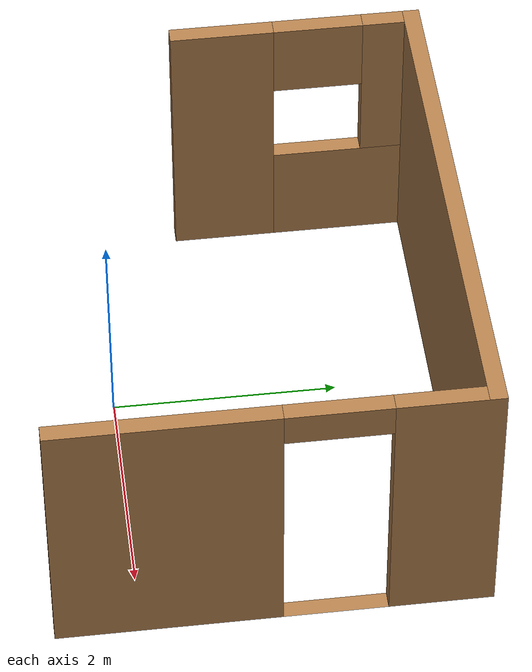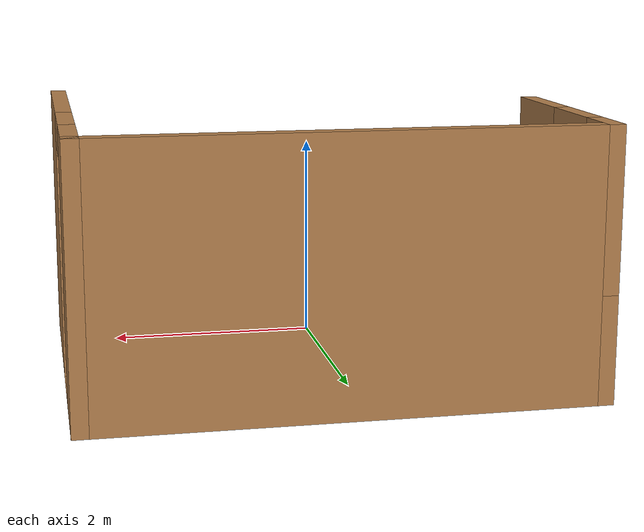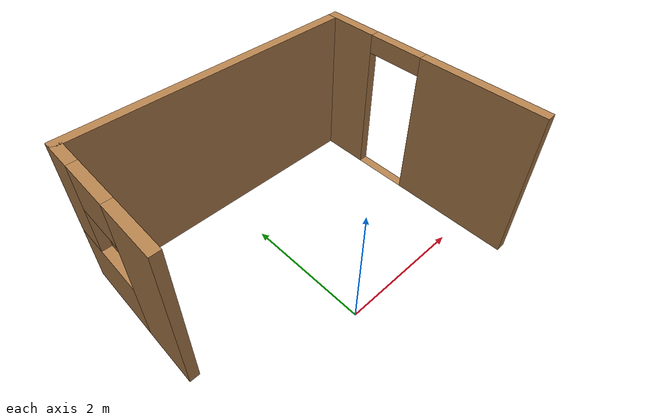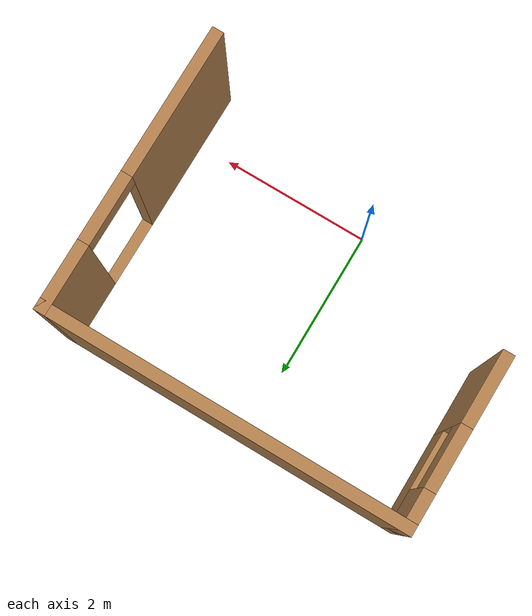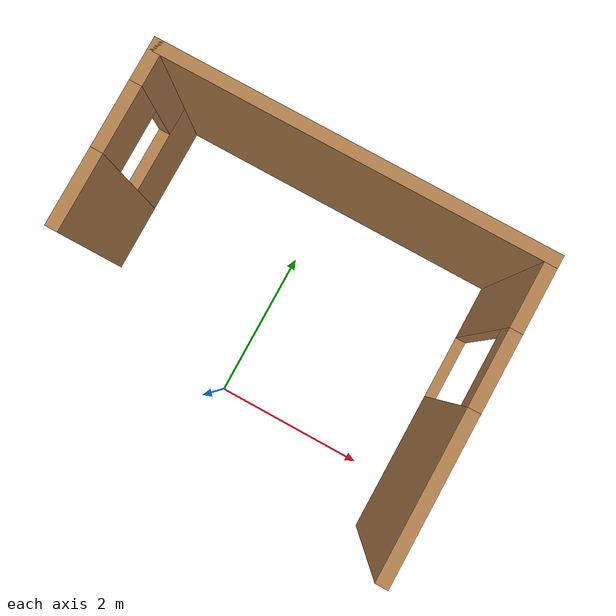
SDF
<?xml version='1.0'?>
<sdf version='1.7'>
  <model name='house'>
    <pose>0.188223 1.14586 0 0 -0 0</pose>
    <link name='Wall_0'>
      <pose>-2.3 0.75 0 0 -0 1.5708</pose>
      <visual name='Wall_0_Visual_0'>
        <pose>-0.662394 0 1.25 0 -0 0</pose>
        <geometry>
          <box>
            <size>0.925211 0.15 2.5</size>
          </box>
        </geometry>
        <material>
          <script>
            <uri>file://media/materials/scripts/gazebo.material</uri>
            <name>Gazebo/Wood</name>
          </script>
          <ambient>1 1 1 1</ambient>
        </material>
        <meta>
          <layer>0</layer>
        </meta>
      </visual>
      <collision name='Wall_0_Collision_0'>
        <geometry>
          <box>
            <size>0.925211 0.15 2.5</size>
          </box>
        </geometry>
        <pose>-0.662394 0 1.25 0 -0 0</pose>
      </collision>
      <visual name='Wall_0_Visual_1'>
        <pose>0.462606 0 0.5 0 -0 0</pose>
        <geometry>
          <box>
            <size>1.32479 0.15 1</size>
          </box>
        </geometry>
        <material>
          <script>
            <uri>file://media/materials/scripts/gazebo.material</uri>
            <name>Gazebo/Wood</name>
          </script>
          <ambient>1 1 1 1</ambient>
        </material>
        <meta>
          <layer>0</layer>
        </meta>
      </visual>
      <collision name='Wall_0_Collision_1'>
        <geometry>
          <box>
            <size>1.32479 0.15 1</size>
          </box>
        </geometry>
        <pose>0.462606 0 0.5 0 -0 0</pose>
      </collision>
      <visual name='Wall_0_Visual_2'>
        <pose>0.862606 0 1.75 0 -0 0</pose>
        <geometry>
          <box>
            <size>0.524789 0.15 1.5</size>
          </box>
        </geometry>
        <material>
          <script>
            <uri>file://media/materials/scripts/gazebo.material</uri>
            <name>Gazebo/Wood</name>
          </script>
          <ambient>1 1 1 1</ambient>
        </material>
        <meta>
          <layer>0</layer>
        </meta>
      </visual>
      <collision name='Wall_0_Collision_2'>
        <geometry>
          <box>
            <size>0.524789 0.15 1.5</size>
          </box>
        </geometry>
        <pose>0.862606 0 1.75 0 -0 0</pose>
      </collision>
      <visual name='Wall_0_Visual_3'>
        <pose>0.200211 0 2.15 0 -0 0</pose>
        <geometry>
          <box>
            <size>0.8 0.15 0.7</size>
          </box>
        </geometry>
        <material>
          <script>
            <uri>file://media/materials/scripts/gazebo.material</uri>
            <name>Gazebo/Wood</name>
          </script>
          <ambient>1 1 1 1</ambient>
        </material>
        <meta>
          <layer>0</layer>
        </meta>
      </visual>
      <collision name='Wall_0_Collision_3'>
        <geometry>
          <box>
            <size>0.8 0.15 0.7</size>
          </box>
        </geometry>
        <pose>0.200211 0 2.15 0 -0 0</pose>
      </collision>
    </link>
    <link name='Wall_1'>
      <collision name='Wall_1_Collision'>
        <geometry>
          <box>
            <size>4.75 0.15 2.5</size>
          </box>
        </geometry>
        <pose>0 0 1.25 0 -0 0</pose>
      </collision>
      <visual name='Wall_1_Visual'>
        <pose>0 0 1.25 0 -0 0</pose>
        <geometry>
          <box>
            <size>4.75 0.15 2.5</size>
          </box>
        </geometry>
        <material>
          <script>
            <uri>file://media/materials/scripts/gazebo.material</uri>
            <name>Gazebo/Wood</name>
          </script>
          <ambient>1 1 1 1</ambient>
        </material>
        <meta>
          <layer>0</layer>
        </meta>
      </visual>
      <pose>-0 1.8 0 0 -0 0</pose>
    </link>
    <link name='Wall_2'>
      <pose>2.3 0 0 0 -0 -1.5708</pose>
      <visual name='Wall_2_Visual_0'>
        <pose>-1.42141 0 1.25 0 -0 0</pose>
        <geometry>
          <box>
            <size>0.907187 0.15 2.5</size>
          </box>
        </geometry>
        <material>
          <script>
            <uri>file://media/materials/scripts/gazebo.material</uri>
            <name>Gazebo/Wood</name>
          </script>
          <ambient>1 1 1 1</ambient>
        </material>
        <meta>
          <layer>0</layer>
        </meta>
      </visual>
      <collision name='Wall_2_Collision_0'>
        <geometry>
          <box>
            <size>0.907187 0.15 2.5</size>
          </box>
        </geometry>
        <pose>-1.42141 0 1.25 0 -0 0</pose>
      </collision>
      <visual name='Wall_2_Visual_1'>
        <pose>0.903593 0 1.25 0 -0 0</pose>
        <geometry>
          <box>
            <size>1.94281 0.15 2.5</size>
          </box>
        </geometry>
        <material>
          <script>
            <uri>file://media/materials/scripts/gazebo.material</uri>
            <name>Gazebo/Wood</name>
          </script>
          <ambient>1 1 1 1</ambient>
        </material>
        <meta>
          <layer>0</layer>
        </meta>
      </visual>
      <collision name='Wall_2_Collision_1'>
        <geometry>
          <box>
            <size>1.94281 0.15 2.5</size>
          </box>
        </geometry>
        <pose>0.903593 0 1.25 0 -0 0</pose>
      </collision>
      <visual name='Wall_2_Visual_2'>
        <pose>-0.517813 0 0 0 -0 0</pose>
        <geometry>
          <box>
            <size>0.9 0.15 0</size>
          </box>
        </geometry>
        <material>
          <script>
            <uri>file://media/materials/scripts/gazebo.material</uri>
            <name>Gazebo/Wood</name>
          </script>
          <ambient>1 1 1 1</ambient>
        </material>
        <meta>
          <layer>0</layer>
        </meta>
      </visual>
      <collision name='Wall_2_Collision_2'>
        <geometry>
          <box>
            <size>0.9 0.15 0</size>
          </box>
        </geometry>
        <pose>-0.517813 0 0 0 -0 0</pose>
      </collision>
      <visual name='Wall_2_Visual_3'>
        <pose>-0.517813 0 2.35 0 -0 0</pose>
        <geometry>
          <box>
            <size>0.9 0.15 0.3</size>
          </box>
        </geometry>
        <material>
          <script>
            <uri>file://media/materials/scripts/gazebo.material</uri>
            <name>Gazebo/Wood</name>
          </script>
          <ambient>1 1 1 1</ambient>
        </material>
        <meta>
          <layer>0</layer>
        </meta>
      </visual>
      <collision name='Wall_2_Collision_3'>
        <geometry>
          <box>
            <size>0.9 0.15 0.3</size>
          </box>
        </geometry>
        <pose>-0.517813 0 2.35 0 -0 0</pose>
      </collision>
    </link>
    <static>1</static>
  </model>
</sdf>
